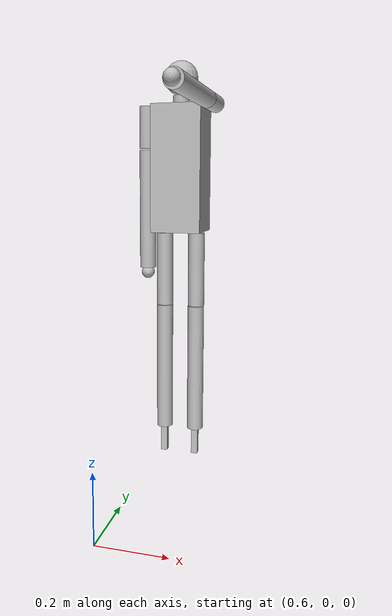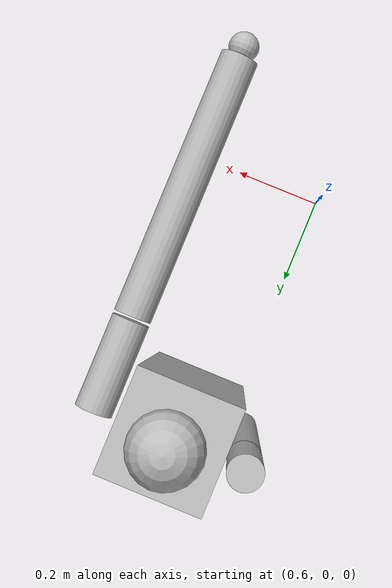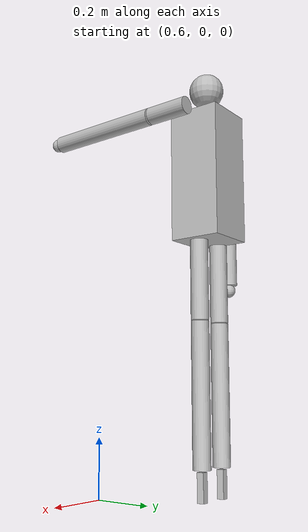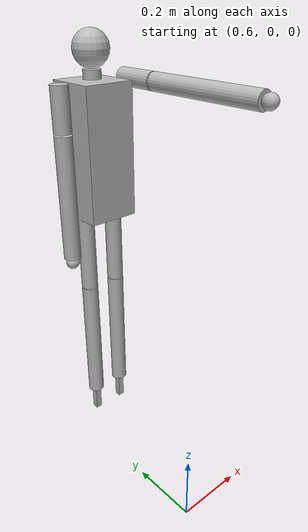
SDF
<sdf version='1.6'>
  <model name='human'>
    <link name='head'>
      <pose frame=''>0 0 0 0 -0 0</pose>
      <inertial>
        <pose frame=''>0.7 0.5 1.225 0 -0 0</pose>
        <mass>5</mass>
        <inertia>
          <ixx>0</ixx>
          <ixy>0</ixy>
          <ixz>0</ixz>
          <iyy>0</iyy>
          <iyz>0</iyz>
          <izz>0</izz>
        </inertia>
      </inertial>
      <collision name='head_collision'>
        <pose frame=''>0 0 0 0 -0 0</pose>
        <geometry>
          <sphere>
            <radius>0.05</radius>
          </sphere>
        </geometry>
      </collision>
      <visual name='head_visual'>
        <pose frame=''>0.7 0.5 1.225 0 -0 0</pose>
        <geometry>
          <sphere>
            <radius>0.05</radius>
          </sphere>
        </geometry>
      </visual>
    </link>
    <joint name='fixed' type='fixed'>
      <child>head</child>
      <parent>world</parent>
    </joint>
    <link name='neck'>
      <pose frame=''>0 0 0 0 -0 0</pose>
      <inertial>
        <pose frame=''>0.7 0.5 1.1625 0 -0 0</pose>
        <mass>2.5</mass>
        <inertia>
          <ixx>0</ixx>
          <ixy>0</ixy>
          <ixz>0</ixz>
          <iyy>0</iyy>
          <iyz>0</iyz>
          <izz>0</izz>
        </inertia>
      </inertial>
      <collision name='neck_collision'>
        <pose frame=''>0 0 0 0 -0 0</pose>
        <geometry>
          <cylinder>
            <length>0.025</length>
            <radius>0.025</radius>
          </cylinder>
        </geometry>
      </collision>
      <visual name='neck_visual'>
        <pose frame=''>0.7 0.5 1.1625 0 -0 0</pose>
        <geometry>
          <cylinder>
            <length>0.025</length>
            <radius>0.025</radius>
          </cylinder>
        </geometry>
      </visual>
    </link>
    <joint name='head_1' type='revolute'>
      <child>neck</child>
      <parent>head</parent>
      <axis>
        <xyz>1 0 0</xyz>
        <limit>
          <lower>-1e+16</lower>
          <upper>1e+16</upper>
        </limit>
        <dynamics>
          <spring_reference>0</spring_reference>
          <spring_stiffness>0</spring_stiffness>
        </dynamics>
        <use_parent_model_frame>1</use_parent_model_frame>
      </axis>
    </joint>
    <link name='torso'>
      <pose frame=''>0 0 0 0 -0 0</pose>
      <inertial>
        <pose frame=''>0.7 0.5 0.96 0 -0 0</pose>
        <mass>50</mass>
        <inertia>
          <ixx>0</ixx>
          <ixy>0</ixy>
          <ixz>0</ixz>
          <iyy>0</iyy>
          <iyz>0</iyz>
          <izz>0</izz>
        </inertia>
      </inertial>
      <collision name='torso_collision'>
        <pose frame=''>0 0 0 0 -0 0</pose>
        <geometry>
          <box>
            <size>0.15 0.15 0.375</size>
          </box>
        </geometry>
      </collision>
      <visual name='torso_visual'>
        <pose frame=''>0.7 0.5 0.96 0 -0 0</pose>
        <geometry>
          <box>
            <size>0.15 0.15 0.375</size>
          </box>
        </geometry>
      </visual>
    </link>
    <joint name='neck_2' type='revolute'>
      <child>torso</child>
      <parent>neck</parent>
      <axis>
        <xyz>1 0 0</xyz>
        <limit>
          <lower>-1e+16</lower>
          <upper>1e+16</upper>
        </limit>
        <dynamics>
          <spring_reference>0</spring_reference>
          <spring_stiffness>0</spring_stiffness>
        </dynamics>
        <use_parent_model_frame>1</use_parent_model_frame>
      </axis>
    </joint>
    <link name='left_hip'>
      <pose frame=''>0 0 0 0 -0 0</pose>
      <inertial>
        <pose frame=''>0.65 0.5 0.655 0 -0 0</pose>
        <mass>12.5</mass>
        <inertia>
          <ixx>0</ixx>
          <ixy>0</ixy>
          <ixz>0</ixz>
          <iyy>0</iyy>
          <iyz>0</iyz>
          <izz>0</izz>
        </inertia>
      </inertial>
      <collision name='left_hip_collision'>
        <pose frame=''>0 0 0 0 -0 0</pose>
        <geometry>
          <cylinder>
            <length>0.225</length>
            <radius>0.025</radius>
          </cylinder>
        </geometry>
      </collision>
      <visual name='left_hip_visual'>
        <pose frame=''>0.65 0.5 0.655 0 -0 0</pose>
        <geometry>
          <cylinder>
            <length>0.225</length>
            <radius>0.025</radius>
          </cylinder>
        </geometry>
      </visual>
    </link>
    <joint name='left_hip_1' type='revolute'>
      <child>left_hip</child>
      <parent>torso</parent>
      <axis>
        <xyz>1 0 0</xyz>
        <limit>
          <lower>-1e+16</lower>
          <upper>1e+16</upper>
        </limit>
        <dynamics>
          <spring_reference>0</spring_reference>
          <spring_stiffness>0</spring_stiffness>
        </dynamics>
        <use_parent_model_frame>1</use_parent_model_frame>
      </axis>
    </joint>
    <link name='left_knee'>
      <pose frame=''>0 0 0 0 -0 0</pose>
      <inertial>
        <pose frame=''>0.65 0.5 0.34 0 -0 0</pose>
        <mass>7.5</mass>
        <inertia>
          <ixx>0</ixx>
          <ixy>0</ixy>
          <ixz>0</ixz>
          <iyy>0</iyy>
          <iyz>0</iyz>
          <izz>0</izz>
        </inertia>
      </inertial>
      <collision name='left_knee_collision'>
        <pose frame=''>0 0 0 0 -0 0</pose>
        <geometry>
          <cylinder>
            <length>0.4</length>
            <radius>0.025</radius>
          </cylinder>
        </geometry>
      </collision>
      <visual name='left_knee_visual'>
        <pose frame=''>0.65 0.5 0.34 0 -0 0</pose>
        <geometry>
          <cylinder>
            <length>0.4</length>
            <radius>0.025</radius>
          </cylinder>
        </geometry>
      </visual>
    </link>
    <joint name='left_knee_1' type='revolute'>
      <child>left_knee</child>
      <parent>left_hip</parent>
      <axis>
        <xyz>1 0 0</xyz>
        <limit>
          <lower>-1e+16</lower>
          <upper>1e+16</upper>
        </limit>
        <dynamics>
          <spring_reference>0</spring_reference>
          <spring_stiffness>0</spring_stiffness>
        </dynamics>
        <use_parent_model_frame>1</use_parent_model_frame>
      </axis>
    </joint>
    <link name='left_foot'>
      <pose frame=''>0 0 0 0 -0 0</pose>
      <inertial>
        <pose frame=''>0.65 0.5 0.095 0 -0 0</pose>
        <mass>2.5</mass>
        <inertia>
          <ixx>0</ixx>
          <ixy>0</ixy>
          <ixz>0</ixz>
          <iyy>0</iyy>
          <iyz>0</iyz>
          <izz>0</izz>
        </inertia>
      </inertial>
      <collision name='left_foot_collision'>
        <pose frame=''>0 0 0 0 -0 0</pose>
        <geometry>
          <box>
            <size>0.02 0.02 0.08</size>
          </box>
        </geometry>
      </collision>
      <visual name='left_foot_visual'>
        <pose frame=''>0.65 0.5 0.095 0 -0 0</pose>
        <geometry>
          <box>
            <size>0.02 0.02 0.08</size>
          </box>
        </geometry>
      </visual>
    </link>
    <joint name='left_foot_1' type='revolute'>
      <child>left_foot</child>
      <parent>left_knee</parent>
      <axis>
        <xyz>1 0 0</xyz>
        <limit>
          <lower>-1e+16</lower>
          <upper>1e+16</upper>
        </limit>
        <dynamics>
          <spring_reference>0</spring_reference>
          <spring_stiffness>0</spring_stiffness>
        </dynamics>
        <use_parent_model_frame>1</use_parent_model_frame>
      </axis>
    </joint>
    <link name='left_shoulder'>
      <pose frame=''>0.595 0.5 1.1475 0 -0 0</pose>
      <inertial>
        <pose frame=''>0 0 -0.0625 0 -0 0</pose>
        <mass>12.5</mass>
        <inertia>
          <ixx>0</ixx>
          <ixy>0</ixy>
          <ixz>0</ixz>
          <iyy>0</iyy>
          <iyz>0</iyz>
          <izz>0</izz>
        </inertia>
      </inertial>
      <collision name='left_shoulder_collision'>
        <pose frame=''>0 0 0 0 -0 0</pose>
        <geometry>
          <cylinder>
            <length>0.125</length>
            <radius>0.025</radius>
          </cylinder>
        </geometry>
      </collision>
      <visual name='left_shoulder_visual'>
        <pose frame=''>0 0 -0.0625 0 -0 0</pose>
        <geometry>
          <cylinder>
            <length>0.125</length>
            <radius>0.025</radius>
          </cylinder>
        </geometry>
      </visual>
    </link>
    <joint name='left_shoulder_1' type='revolute'>
      <child>left_shoulder</child>
      <parent>torso</parent>
      <axis>
        <xyz>1 0 0</xyz>
        <limit>
          <lower>-3.14</lower>
          <upper>3.14</upper>
          <effort>30</effort>
          <velocity>1</velocity>
        </limit>
        <dynamics>
          <spring_reference>0</spring_reference>
          <spring_stiffness>0</spring_stiffness>
        </dynamics>
        <use_parent_model_frame>1</use_parent_model_frame>
      </axis>
    </joint>
    <link name='left_elbow'>
      <pose frame=''>0.595 0.5 1.0225 0 -0 0</pose>
      <inertial>
        <pose frame=''>0 0 -0.23375 0 -0 0</pose>
        <mass>10</mass>
        <inertia>
          <ixx>0.0712969</ixx>
          <ixy>0</ixy>
          <ixz>0</ixz>
          <iyy>0.0712969</iyy>
          <iyz>0</iyz>
          <izz>0</izz>
        </inertia>
      </inertial>
      <collision name='left_elbow_collision'>
        <pose frame=''>0 0 0 0 -0 0</pose>
        <geometry>
          <cylinder>
            <length>0.36</length>
            <radius>0.025</radius>
          </cylinder>
        </geometry>
      </collision>
      <collision name='left_elbow_fixed_joint_lump__left_hand_collision_1'>
        <pose frame=''>0 0 -0.36 0 -0 0</pose>
        <geometry>
          <sphere>
            <radius>0.02</radius>
          </sphere>
        </geometry>
      </collision>
      <visual name='left_elbow_visual'>
        <pose frame=''>0 0 -0.185 0 -0 0</pose>
        <geometry>
          <cylinder>
            <length>0.36</length>
            <radius>0.025</radius>
          </cylinder>
        </geometry>
      </visual>
      <visual name='left_elbow_fixed_joint_lump__left_hand_visual_1'>
        <pose frame=''>0 0 -0.38 0 -0 0</pose>
        <geometry>
          <sphere>
            <radius>0.02</radius>
          </sphere>
        </geometry>
      </visual>
    </link>
    <joint name='left_elbow_1' type='revolute'>
      <child>left_elbow</child>
      <parent>left_shoulder</parent>
      <axis>
        <xyz>1 0 0</xyz>
        <limit>
          <lower>-1.57</lower>
          <upper>0</upper>
          <effort>30</effort>
          <velocity>1</velocity>
        </limit>
        <dynamics>
          <spring_reference>0</spring_reference>
          <spring_stiffness>0</spring_stiffness>
        </dynamics>
        <use_parent_model_frame>1</use_parent_model_frame>
      </axis>
    </joint>
    <link name='right_hip'>
      <pose frame=''>0 0 0 0 -0 0</pose>
      <inertial>
        <pose frame=''>0.75 0.5 0.655 0 -0 0</pose>
        <mass>12.5</mass>
        <inertia>
          <ixx>0</ixx>
          <ixy>0</ixy>
          <ixz>0</ixz>
          <iyy>0</iyy>
          <iyz>0</iyz>
          <izz>0</izz>
        </inertia>
      </inertial>
      <collision name='right_hip_collision'>
        <pose frame=''>0 0 0 0 -0 0</pose>
        <geometry>
          <cylinder>
            <length>0.225</length>
            <radius>0.025</radius>
          </cylinder>
        </geometry>
      </collision>
      <visual name='right_hip_visual'>
        <pose frame=''>0.75 0.5 0.655 0 -0 0</pose>
        <geometry>
          <cylinder>
            <length>0.225</length>
            <radius>0.025</radius>
          </cylinder>
        </geometry>
      </visual>
    </link>
    <joint name='right_hip_1' type='revolute'>
      <child>right_hip</child>
      <parent>torso</parent>
      <axis>
        <xyz>1 0 0</xyz>
        <limit>
          <lower>-1e+16</lower>
          <upper>1e+16</upper>
        </limit>
        <dynamics>
          <spring_reference>0</spring_reference>
          <spring_stiffness>0</spring_stiffness>
        </dynamics>
        <use_parent_model_frame>1</use_parent_model_frame>
      </axis>
    </joint>
    <link name='right_knee'>
      <pose frame=''>0 0 0 0 -0 0</pose>
      <inertial>
        <pose frame=''>0.75 0.5 0.34 0 -0 0</pose>
        <mass>7.5</mass>
        <inertia>
          <ixx>0</ixx>
          <ixy>0</ixy>
          <ixz>0</ixz>
          <iyy>0</iyy>
          <iyz>0</iyz>
          <izz>0</izz>
        </inertia>
      </inertial>
      <collision name='right_knee_collision'>
        <pose frame=''>0 0 0 0 -0 0</pose>
        <geometry>
          <cylinder>
            <length>0.4</length>
            <radius>0.025</radius>
          </cylinder>
        </geometry>
      </collision>
      <visual name='right_knee_visual'>
        <pose frame=''>0.75 0.5 0.34 0 -0 0</pose>
        <geometry>
          <cylinder>
            <length>0.4</length>
            <radius>0.025</radius>
          </cylinder>
        </geometry>
      </visual>
    </link>
    <joint name='right_knee_1' type='revolute'>
      <child>right_knee</child>
      <parent>right_hip</parent>
      <axis>
        <xyz>1 0 0</xyz>
        <limit>
          <lower>-1e+16</lower>
          <upper>1e+16</upper>
        </limit>
        <dynamics>
          <spring_reference>0</spring_reference>
          <spring_stiffness>0</spring_stiffness>
        </dynamics>
        <use_parent_model_frame>1</use_parent_model_frame>
      </axis>
    </joint>
    <link name='right_foot'>
      <pose frame=''>0 0 0 0 -0 0</pose>
      <inertial>
        <pose frame=''>0.75 0.5 0.095 0 -0 0</pose>
        <mass>2.5</mass>
        <inertia>
          <ixx>0</ixx>
          <ixy>0</ixy>
          <ixz>0</ixz>
          <iyy>0</iyy>
          <iyz>0</iyz>
          <izz>0</izz>
        </inertia>
      </inertial>
      <collision name='right_foot_collision'>
        <pose frame=''>0 0 0 0 -0 0</pose>
        <geometry>
          <box>
            <size>0.02 0.02 0.08</size>
          </box>
        </geometry>
      </collision>
      <visual name='right_foot_visual'>
        <pose frame=''>0.75 0.5 0.095 0 -0 0</pose>
        <geometry>
          <box>
            <size>0.02 0.02 0.08</size>
          </box>
        </geometry>
      </visual>
    </link>
    <joint name='right_foot_1' type='revolute'>
      <child>right_foot</child>
      <parent>right_knee</parent>
      <axis>
        <xyz>1 0 0</xyz>
        <limit>
          <lower>-1e+16</lower>
          <upper>1e+16</upper>
        </limit>
        <dynamics>
          <spring_reference>0</spring_reference>
          <spring_stiffness>0</spring_stiffness>
        </dynamics>
        <use_parent_model_frame>1</use_parent_model_frame>
      </axis>
    </joint>
    <link name='right_shoulder'>
      <pose frame=''>0.805 0.5 1.1475 -1.57 0 0</pose>
      <inertial>
        <pose frame=''>0 0 -0.0625 0 -0 0</pose>
        <mass>12.5</mass>
        <inertia>
          <ixx>0</ixx>
          <ixy>0</ixy>
          <ixz>0</ixz>
          <iyy>0</iyy>
          <iyz>0</iyz>
          <izz>0</izz>
        </inertia>
      </inertial>
      <collision name='right_shoulder_collision'>
        <pose frame=''>0 0 0 0 -0 0</pose>
        <geometry>
          <cylinder>
            <length>0.125</length>
            <radius>0.025</radius>
          </cylinder>
        </geometry>
      </collision>
      <visual name='right_shoulder_visual'>
        <pose frame=''>0 0 -0.0625 0 -0 0</pose>
        <geometry>
          <cylinder>
            <length>0.125</length>
            <radius>0.025</radius>
          </cylinder>
        </geometry>
      </visual>
    </link>
    <joint name='right_shoulder_1' type='revolute'>
      <child>right_shoulder</child>
      <parent>torso</parent>
      <axis>
        <xyz>1 0 0</xyz>
        <limit>
          <lower>-3.14</lower>
          <upper>3.14</upper>
          <effort>30</effort>
          <velocity>1</velocity>
        </limit>
        <dynamics>
          <spring_reference>0</spring_reference>
          <spring_stiffness>0</spring_stiffness>
        </dynamics>
        <use_parent_model_frame>1</use_parent_model_frame>
      </axis>
    </joint>
    <link name='right_elbow'>
      <pose frame=''>0.805 0.375 1.1474 -1.57 0 0</pose>
      <inertial>
        <pose frame=''>0 0 -0.23375 0 -0 0</pose>
        <mass>10</mass>
        <inertia>
          <ixx>0.0712969</ixx>
          <ixy>0</ixy>
          <ixz>0</ixz>
          <iyy>0.0712969</iyy>
          <iyz>0</iyz>
          <izz>0</izz>
        </inertia>
      </inertial>
      <collision name='right_elbow_collision'>
        <pose frame=''>0 0 0 0 -0 0</pose>
        <geometry>
          <cylinder>
            <length>0.36</length>
            <radius>0.025</radius>
          </cylinder>
        </geometry>
      </collision>
      <collision name='right_elbow_fixed_joint_lump__right_hand_collision_1'>
        <pose frame=''>0 0 -0.36 0 -0 0</pose>
        <geometry>
          <sphere>
            <radius>0.02</radius>
          </sphere>
        </geometry>
      </collision>
      <visual name='right_elbow_visual'>
        <pose frame=''>0 0 -0.185 0 -0 0</pose>
        <geometry>
          <cylinder>
            <length>0.36</length>
            <radius>0.025</radius>
          </cylinder>
        </geometry>
      </visual>
      <visual name='right_elbow_fixed_joint_lump__right_hand_visual_1'>
        <pose frame=''>0 0 -0.38 0 -0 0</pose>
        <geometry>
          <sphere>
            <radius>0.02</radius>
          </sphere>
        </geometry>
      </visual>
    </link>
    <joint name='right_elbow_1' type='revolute'>
      <child>right_elbow</child>
      <parent>right_shoulder</parent>
      <axis>
        <xyz>1 0 0</xyz>
        <limit>
          <lower>-1.57</lower>
          <upper>0</upper>
          <effort>30</effort>
          <velocity>1</velocity>
        </limit>
        <dynamics>
          <spring_reference>0</spring_reference>
          <spring_stiffness>0</spring_stiffness>
        </dynamics>
        <use_parent_model_frame>1</use_parent_model_frame>
      </axis>
    </joint>
  </model>
</sdf>
